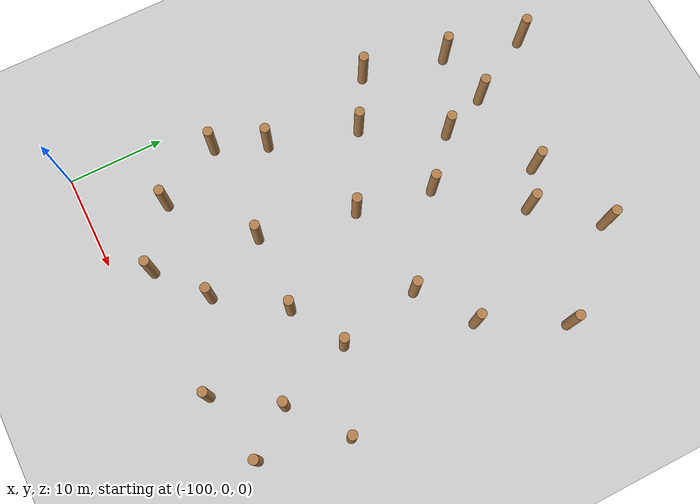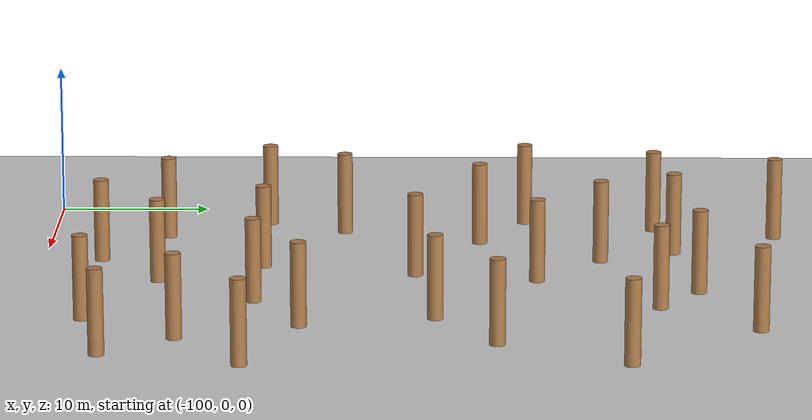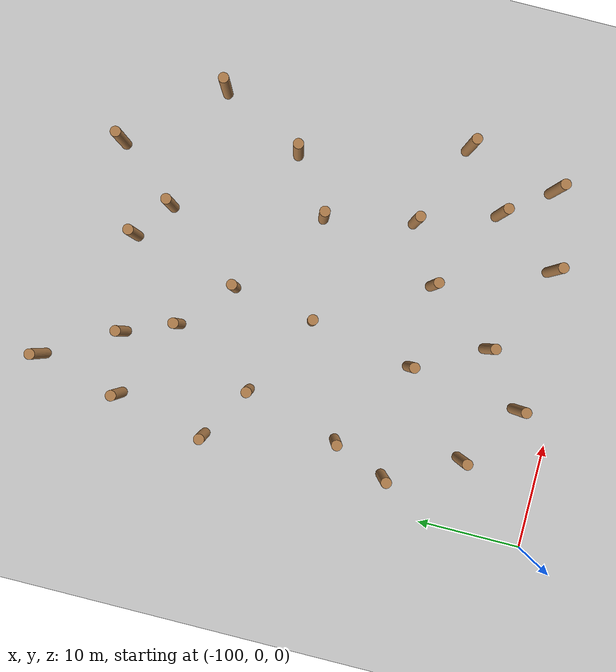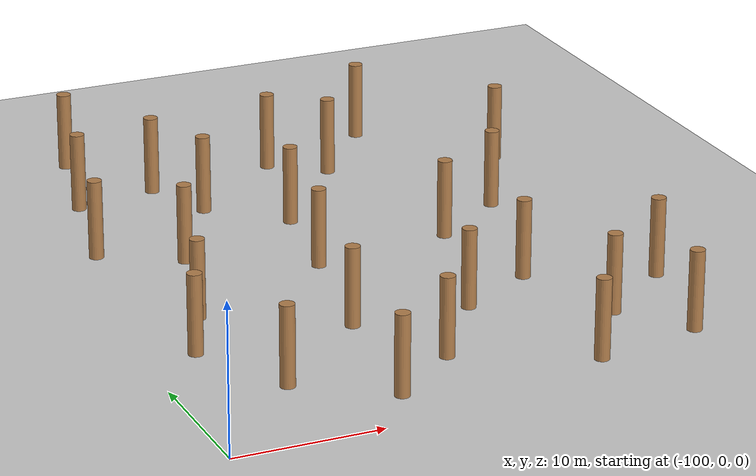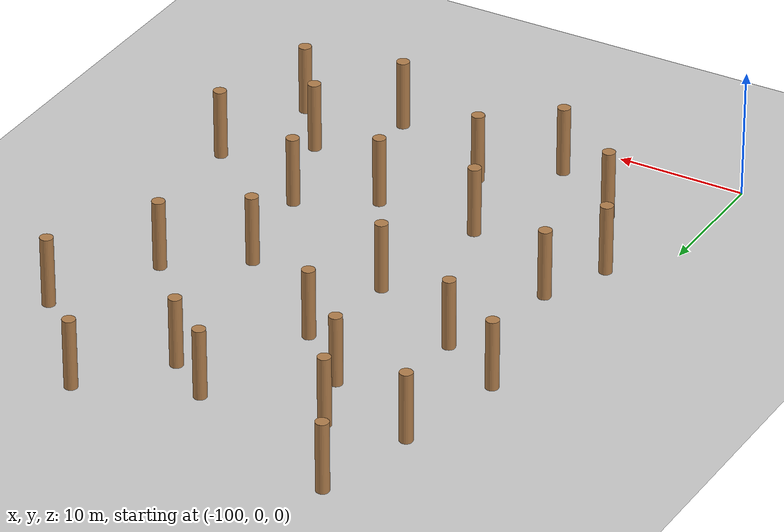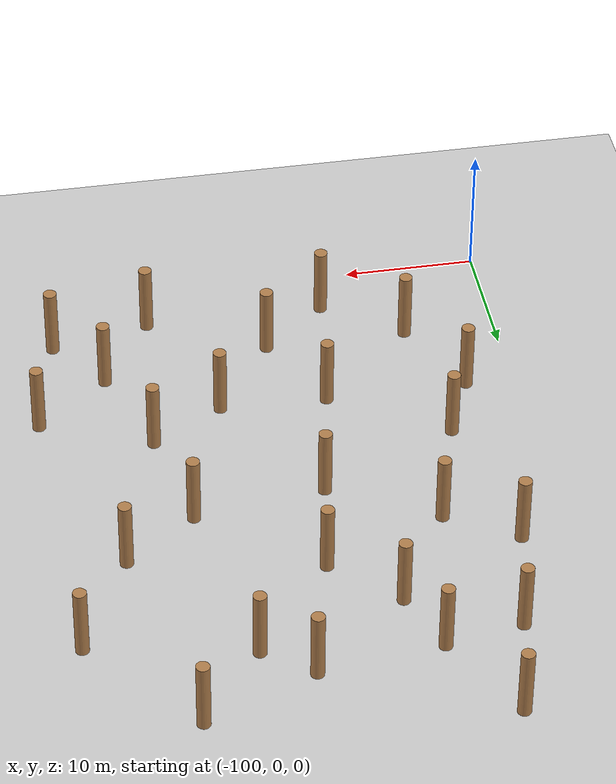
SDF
<sdf version="1.6">
 <world name="default">
  <model name="ground_plane">
   <static>1</static>
   <link name="link">
    <collision name="collision">
     <geometry><plane><normal>0 0 1</normal><size>100 100</size></plane></geometry>
     <surface><friction><ode><mu>100</mu><mu2>50</mu2></ode></friction></surface>
    </collision>
    <visual name="visual">
     <cast_shadows>0</cast_shadows>
     <geometry><plane><normal>0 0 1</normal><size>100 100</size></plane></geometry>
     <material>
      <script><uri>file://media/materials/scripts/gazebo.material</uri><name>Gazebo/Grey</name></script>
     </material>
    </visual>
   </link>
  </model>
  <model name="WoodPillars_9">
   <link name="link">
    <inertial>
     <mass>1</mass>
     <inertia><ixx>0.145833</ixx><ixy>0</ixy><ixz>0</ixz><iyy>0.145833</iyy><iyz>0</iyz><izz>0.125</izz></inertia>
    </inertial>
    <visual name="visual">
     <geometry><cylinder><radius>0.5</radius><length>5.50507</length></cylinder></geometry>
     <material>
      <script><name>Gazebo/Wood</name><uri>file://media/materials/scripts/gazebo.material</uri></script>
     </material>
    </visual>
    <collision name="collision">
     <geometry><cylinder><radius>0.5</radius><length>5.50507</length></cylinder></geometry>
     <surface>
      <friction>
       <ode><mu>1</mu><mu2>1</mu2><fdir1>0 0 0</fdir1><slip1>0</slip1><slip2>0</slip2></ode>
       <torsional>
        <coefficient>1</coefficient>
        <patch_radius>0</patch_radius>
        <surface_radius>0</surface_radius>
        <use_patch_radius>1</use_patch_radius>
        <ode><slip>0</slip></ode>
       </torsional>
      </friction>
      <bounce><restitution_coefficient>0</restitution_coefficient><threshold>1e+06</threshold></bounce>
      <contact>
       <collide_without_contact>0</collide_without_contact>
       <collide_without_contact_bitmask>1</collide_without_contact_bitmask>
       <collide_bitmask>1</collide_bitmask>
       <ode>
        <soft_cfm>0</soft_cfm>
        <soft_erp>0.2</soft_erp>
        <kp>1e+13</kp>
        <kd>1</kd>
        <max_vel>0.01</max_vel>
        <min_depth>0</min_depth>
       </ode>
       <bullet>
        <split_impulse>1</split_impulse>
        <split_impulse_penetration_threshold>-0.01</split_impulse_penetration_threshold>
        <soft_cfm>0</soft_cfm>
        <soft_erp>0.2</soft_erp>
        <kp>1e+13</kp>
        <kd>1</kd>
       </bullet>
      </contact>
     </surface>
    </collision>
   </link>
   <link name="link_clone">
    <inertial>
     <mass>1</mass>
     <inertia><ixx>0.145833</ixx><ixy>0</ixy><ixz>0</ixz><iyy>0.145833</iyy><iyz>0</iyz><izz>0.125</izz></inertia>
    </inertial>
    <pose>17.6954 -2.91348 -2e-06 0 -0 -0.001289</pose>
    <visual name="visual">
     <geometry><cylinder><radius>0.5</radius><length>5.50507</length></cylinder></geometry>
     <material>
      <script><name>Gazebo/Wood</name><uri>file://media/materials/scripts/gazebo.material</uri></script>
      <shader type="pixel"/>
     </material>
    </visual>
    <collision name="collision">
     <geometry><cylinder><radius>0.5</radius><length>5.50507</length></cylinder></geometry>
     <surface>
      <friction>
       <ode><mu>1</mu><mu2>1</mu2><fdir1>0 0 0</fdir1><slip1>0</slip1><slip2>0</slip2></ode>
       <torsional>
        <coefficient>1</coefficient>
        <patch_radius>0</patch_radius>
        <surface_radius>0</surface_radius>
        <use_patch_radius>1</use_patch_radius>
        <ode><slip>0</slip></ode>
       </torsional>
      </friction>
      <bounce><restitution_coefficient>0</restitution_coefficient><threshold>1e+06</threshold></bounce>
      <contact>
       <collide_without_contact>0</collide_without_contact>
       <collide_without_contact_bitmask>1</collide_without_contact_bitmask>
       <collide_bitmask>1</collide_bitmask>
       <ode>
        <soft_cfm>0</soft_cfm>
        <soft_erp>0.2</soft_erp>
        <kp>1e+13</kp>
        <kd>1</kd>
        <max_vel>0.01</max_vel>
        <min_depth>0</min_depth>
       </ode>
       <bullet>
        <split_impulse>1</split_impulse>
        <split_impulse_penetration_threshold>-0.01</split_impulse_penetration_threshold>
        <soft_cfm>0</soft_cfm>
        <soft_erp>0.2</soft_erp>
        <kp>1e+13</kp>
        <kd>1</kd>
       </bullet>
      </contact>
     </surface>
    </collision>
   </link>
   <link name="link_clone_10">
    <inertial>
     <mass>1</mass>
     <inertia><ixx>0.145833</ixx><ixy>0</ixy><ixz>0</ixz><iyy>0.145833</iyy><iyz>0</iyz><izz>0.125</izz></inertia>
    </inertial>
    <pose>2.50237 12.8939 0 0 -0 -0.001289</pose>
    <visual name="visual">
     <geometry><cylinder><radius>0.5</radius><length>5.50507</length></cylinder></geometry>
     <material>
      <script><name>Gazebo/Wood</name><uri>file://media/materials/scripts/gazebo.material</uri></script>
      <shader type="pixel"/>
     </material>
    </visual>
    <collision name="collision">
     <geometry><cylinder><radius>0.5</radius><length>5.50507</length></cylinder></geometry>
     <surface>
      <friction>
       <ode><mu>1</mu><mu2>1</mu2><fdir1>0 0 0</fdir1><slip1>0</slip1><slip2>0</slip2></ode>
       <torsional>
        <coefficient>1</coefficient>
        <patch_radius>0</patch_radius>
        <surface_radius>0</surface_radius>
        <use_patch_radius>1</use_patch_radius>
        <ode><slip>0</slip></ode>
       </torsional>
      </friction>
      <bounce><restitution_coefficient>0</restitution_coefficient><threshold>1e+06</threshold></bounce>
      <contact>
       <collide_without_contact>0</collide_without_contact>
       <collide_without_contact_bitmask>1</collide_without_contact_bitmask>
       <collide_bitmask>1</collide_bitmask>
       <ode>
        <soft_cfm>0</soft_cfm>
        <soft_erp>0.2</soft_erp>
        <kp>1e+13</kp>
        <kd>1</kd>
        <max_vel>0.01</max_vel>
        <min_depth>0</min_depth>
       </ode>
       <bullet>
        <split_impulse>1</split_impulse>
        <split_impulse_penetration_threshold>-0.01</split_impulse_penetration_threshold>
        <soft_cfm>0</soft_cfm>
        <soft_erp>0.2</soft_erp>
        <kp>1e+13</kp>
        <kd>1</kd>
       </bullet>
      </contact>
     </surface>
    </collision>
   </link>
   <link name="link_clone_11">
    <inertial>
     <mass>1</mass>
     <inertia><ixx>0.145833</ixx><ixy>0</ixy><ixz>0</ixz><iyy>0.145833</iyy><iyz>0</iyz><izz>0.125</izz></inertia>
    </inertial>
    <pose>20.1245 17.4079 -2e-06 0 -0 -0.001289</pose>
    <visual name="visual">
     <geometry><cylinder><radius>0.5</radius><length>5.50507</length></cylinder></geometry>
     <material>
      <script><name>Gazebo/Wood</name><uri>file://media/materials/scripts/gazebo.material</uri></script>
      <shader type="pixel"/>
     </material>
    </visual>
    <collision name="collision">
     <geometry><cylinder><radius>0.5</radius><length>5.50507</length></cylinder></geometry>
     <surface>
      <friction>
       <ode><mu>1</mu><mu2>1</mu2><fdir1>0 0 0</fdir1><slip1>0</slip1><slip2>0</slip2></ode>
       <torsional>
        <coefficient>1</coefficient>
        <patch_radius>0</patch_radius>
        <surface_radius>0</surface_radius>
        <use_patch_radius>1</use_patch_radius>
        <ode><slip>0</slip></ode>
       </torsional>
      </friction>
      <bounce><restitution_coefficient>0</restitution_coefficient><threshold>1e+06</threshold></bounce>
      <contact>
       <collide_without_contact>0</collide_without_contact>
       <collide_without_contact_bitmask>1</collide_without_contact_bitmask>
       <collide_bitmask>1</collide_bitmask>
       <ode>
        <soft_cfm>0</soft_cfm>
        <soft_erp>0.2</soft_erp>
        <kp>1e+13</kp>
        <kd>1</kd>
        <max_vel>0.01</max_vel>
        <min_depth>0</min_depth>
       </ode>
       <bullet>
        <split_impulse>1</split_impulse>
        <split_impulse_penetration_threshold>-0.01</split_impulse_penetration_threshold>
        <soft_cfm>0</soft_cfm>
        <soft_erp>0.2</soft_erp>
        <kp>1e+13</kp>
        <kd>1</kd>
       </bullet>
      </contact>
     </surface>
    </collision>
   </link>
   <link name="link_clone_14">
    <inertial>
     <mass>1</mass>
     <inertia><ixx>0.145833</ixx><ixy>0</ixy><ixz>0</ixz><iyy>0.145833</iyy><iyz>0</iyz><izz>0.125</izz></inertia>
    </inertial>
    <pose>9.31461 -20.9997 -1e-06 0 -0 -0.001289</pose>
    <visual name="visual">
     <geometry><cylinder><radius>0.5</radius><length>5.50507</length></cylinder></geometry>
     <material>
      <script><name>Gazebo/Wood</name><uri>file://media/materials/scripts/gazebo.material</uri></script>
      <shader type="pixel"/>
     </material>
    </visual>
    <collision name="collision">
     <geometry><cylinder><radius>0.5</radius><length>5.50507</length></cylinder></geometry>
     <surface>
      <friction>
       <ode><mu>1</mu><mu2>1</mu2><fdir1>0 0 0</fdir1><slip1>0</slip1><slip2>0</slip2></ode>
       <torsional>
        <coefficient>1</coefficient>
        <patch_radius>0</patch_radius>
        <surface_radius>0</surface_radius>
        <use_patch_radius>1</use_patch_radius>
        <ode><slip>0</slip></ode>
       </torsional>
      </friction>
      <bounce><restitution_coefficient>0</restitution_coefficient><threshold>1e+06</threshold></bounce>
      <contact>
       <collide_without_contact>0</collide_without_contact>
       <collide_without_contact_bitmask>1</collide_without_contact_bitmask>
       <collide_bitmask>1</collide_bitmask>
       <ode>
        <soft_cfm>0</soft_cfm>
        <soft_erp>0.2</soft_erp>
        <kp>1e+13</kp>
        <kd>1</kd>
        <max_vel>0.01</max_vel>
        <min_depth>0</min_depth>
       </ode>
       <bullet>
        <split_impulse>1</split_impulse>
        <split_impulse_penetration_threshold>-0.01</split_impulse_penetration_threshold>
        <soft_cfm>0</soft_cfm>
        <soft_erp>0.2</soft_erp>
        <kp>1e+13</kp>
        <kd>1</kd>
       </bullet>
      </contact>
     </surface>
    </collision>
   </link>
   <link name="link_clone_15">
    <inertial>
     <mass>1</mass>
     <inertia><ixx>0.145833</ixx><ixy>0</ixy><ixz>0</ixz><iyy>0.145833</iyy><iyz>0</iyz><izz>0.125</izz></inertia>
    </inertial>
    <pose>17.9894 -25.1945 -2e-06 0 -0 -0.001289</pose>
    <visual name="visual">
     <geometry><cylinder><radius>0.5</radius><length>5.50507</length></cylinder></geometry>
     <material>
      <script><name>Gazebo/Wood</name><uri>file://media/materials/scripts/gazebo.material</uri></script>
      <shader type="pixel"/>
     </material>
    </visual>
    <collision name="collision">
     <geometry><cylinder><radius>0.5</radius><length>5.50507</length></cylinder></geometry>
     <surface>
      <friction>
       <ode><mu>1</mu><mu2>1</mu2><fdir1>0 0 0</fdir1><slip1>0</slip1><slip2>0</slip2></ode>
       <torsional>
        <coefficient>1</coefficient>
        <patch_radius>0</patch_radius>
        <surface_radius>0</surface_radius>
        <use_patch_radius>1</use_patch_radius>
        <ode><slip>0</slip></ode>
       </torsional>
      </friction>
      <bounce><restitution_coefficient>0</restitution_coefficient><threshold>1e+06</threshold></bounce>
      <contact>
       <collide_without_contact>0</collide_without_contact>
       <collide_without_contact_bitmask>1</collide_without_contact_bitmask>
       <collide_bitmask>1</collide_bitmask>
       <ode>
        <soft_cfm>0</soft_cfm>
        <soft_erp>0.2</soft_erp>
        <kp>1e+13</kp>
        <kd>1</kd>
        <max_vel>0.01</max_vel>
        <min_depth>0</min_depth>
       </ode>
       <bullet>
        <split_impulse>1</split_impulse>
        <split_impulse_penetration_threshold>-0.01</split_impulse_penetration_threshold>
        <soft_cfm>0</soft_cfm>
        <soft_erp>0.2</soft_erp>
        <kp>1e+13</kp>
        <kd>1</kd>
       </bullet>
      </contact>
     </surface>
    </collision>
   </link>
   <link name="link_clone_17">
    <inertial>
     <mass>1</mass>
     <inertia><ixx>0.145833</ixx><ixy>0</ixy><ixz>0</ixz><iyy>0.145833</iyy><iyz>0</iyz><izz>0.125</izz></inertia>
    </inertial>
    <pose>19.3784 -11.4604 -2e-06 0 -0 -0.001289</pose>
    <visual name="visual">
     <geometry><cylinder><radius>0.5</radius><length>5.50507</length></cylinder></geometry>
     <material>
      <script><name>Gazebo/Wood</name><uri>file://media/materials/scripts/gazebo.material</uri></script>
      <shader type="pixel"/>
     </material>
    </visual>
    <collision name="collision">
     <geometry><cylinder><radius>0.5</radius><length>5.50507</length></cylinder></geometry>
     <surface>
      <friction>
       <ode><mu>1</mu><mu2>1</mu2><fdir1>0 0 0</fdir1><slip1>0</slip1><slip2>0</slip2></ode>
       <torsional>
        <coefficient>1</coefficient>
        <patch_radius>0</patch_radius>
        <surface_radius>0</surface_radius>
        <use_patch_radius>1</use_patch_radius>
        <ode><slip>0</slip></ode>
       </torsional>
      </friction>
      <bounce><restitution_coefficient>0</restitution_coefficient><threshold>1e+06</threshold></bounce>
      <contact>
       <collide_without_contact>0</collide_without_contact>
       <collide_without_contact_bitmask>1</collide_without_contact_bitmask>
       <collide_bitmask>1</collide_bitmask>
       <ode>
        <soft_cfm>0</soft_cfm>
        <soft_erp>0.2</soft_erp>
        <kp>1e+13</kp>
        <kd>1</kd>
        <max_vel>0.01</max_vel>
        <min_depth>0</min_depth>
       </ode>
       <bullet>
        <split_impulse>1</split_impulse>
        <split_impulse_penetration_threshold>-0.01</split_impulse_penetration_threshold>
        <soft_cfm>0</soft_cfm>
        <soft_erp>0.2</soft_erp>
        <kp>1e+13</kp>
        <kd>1</kd>
       </bullet>
      </contact>
     </surface>
    </collision>
   </link>
   <link name="link_clone_18">
    <inertial>
     <mass>1</mass>
     <inertia><ixx>0.145833</ixx><ixy>0</ixy><ixz>0</ixz><iyy>0.145833</iyy><iyz>0</iyz><izz>0.125</izz></inertia>
    </inertial>
    <pose>9.1573 3.67739 -1e-06 0 -0 -0.001289</pose>
    <visual name="visual">
     <geometry><cylinder><radius>0.5</radius><length>5.50507</length></cylinder></geometry>
     <material>
      <script><name>Gazebo/Wood</name><uri>file://media/materials/scripts/gazebo.material</uri></script>
      <shader type="pixel"/>
     </material>
    </visual>
    <collision name="collision">
     <geometry><cylinder><radius>0.5</radius><length>5.50507</length></cylinder></geometry>
     <surface>
      <friction>
       <ode><mu>1</mu><mu2>1</mu2><fdir1>0 0 0</fdir1><slip1>0</slip1><slip2>0</slip2></ode>
       <torsional>
        <coefficient>1</coefficient>
        <patch_radius>0</patch_radius>
        <surface_radius>0</surface_radius>
        <use_patch_radius>1</use_patch_radius>
        <ode><slip>0</slip></ode>
       </torsional>
      </friction>
      <bounce><restitution_coefficient>0</restitution_coefficient><threshold>1e+06</threshold></bounce>
      <contact>
       <collide_without_contact>0</collide_without_contact>
       <collide_without_contact_bitmask>1</collide_without_contact_bitmask>
       <collide_bitmask>1</collide_bitmask>
       <ode>
        <soft_cfm>0</soft_cfm>
        <soft_erp>0.2</soft_erp>
        <kp>1e+13</kp>
        <kd>1</kd>
        <max_vel>0.01</max_vel>
        <min_depth>0</min_depth>
       </ode>
       <bullet>
        <split_impulse>1</split_impulse>
        <split_impulse_penetration_threshold>-0.01</split_impulse_penetration_threshold>
        <soft_cfm>0</soft_cfm>
        <soft_erp>0.2</soft_erp>
        <kp>1e+13</kp>
        <kd>1</kd>
       </bullet>
      </contact>
     </surface>
    </collision>
   </link>
   <link name="link_clone_19">
    <inertial>
     <mass>1</mass>
     <inertia><ixx>0.145833</ixx><ixy>0</ixy><ixz>0</ixz><iyy>0.145833</iyy><iyz>0</iyz><izz>0.125</izz></inertia>
    </inertial>
    <pose>-3.28611 11.8265 -0 0 -0 -0.001289</pose>
    <visual name="visual">
     <geometry><cylinder><radius>0.5</radius><length>5.50507</length></cylinder></geometry>
     <material>
      <script><name>Gazebo/Wood</name><uri>file://media/materials/scripts/gazebo.material</uri></script>
      <shader type="pixel"/>
     </material>
    </visual>
    <collision name="collision">
     <geometry><cylinder><radius>0.5</radius><length>5.50507</length></cylinder></geometry>
     <surface>
      <friction>
       <ode><mu>1</mu><mu2>1</mu2><fdir1>0 0 0</fdir1><slip1>0</slip1><slip2>0</slip2></ode>
       <torsional>
        <coefficient>1</coefficient>
        <patch_radius>0</patch_radius>
        <surface_radius>0</surface_radius>
        <use_patch_radius>1</use_patch_radius>
        <ode><slip>0</slip></ode>
       </torsional>
      </friction>
      <bounce><restitution_coefficient>0</restitution_coefficient><threshold>1e+06</threshold></bounce>
      <contact>
       <collide_without_contact>0</collide_without_contact>
       <collide_without_contact_bitmask>1</collide_without_contact_bitmask>
       <collide_bitmask>1</collide_bitmask>
       <ode>
        <soft_cfm>0</soft_cfm>
        <soft_erp>0.2</soft_erp>
        <kp>1e+13</kp>
        <kd>1</kd>
        <max_vel>0.01</max_vel>
        <min_depth>0</min_depth>
       </ode>
       <bullet>
        <split_impulse>1</split_impulse>
        <split_impulse_penetration_threshold>-0.01</split_impulse_penetration_threshold>
        <soft_cfm>0</soft_cfm>
        <soft_erp>0.2</soft_erp>
        <kp>1e+13</kp>
        <kd>1</kd>
       </bullet>
      </contact>
     </surface>
    </collision>
   </link>
   <link name="link_clone_20">
    <inertial>
     <mass>1</mass>
     <inertia><ixx>0.145833</ixx><ixy>0</ixy><ixz>0</ixz><iyy>0.145833</iyy><iyz>0</iyz><izz>0.125</izz></inertia>
    </inertial>
    <pose>-2.64423 -9.12396 -0 0 -0 -0.001289</pose>
    <visual name="visual">
     <geometry><cylinder><radius>0.5</radius><length>5.50507</length></cylinder></geometry>
     <material>
      <script><name>Gazebo/Wood</name><uri>file://media/materials/scripts/gazebo.material</uri></script>
      <shader type="pixel"/>
     </material>
    </visual>
    <collision name="collision">
     <geometry><cylinder><radius>0.5</radius><length>5.50507</length></cylinder></geometry>
     <surface>
      <friction>
       <ode><mu>1</mu><mu2>1</mu2><fdir1>0 0 0</fdir1><slip1>0</slip1><slip2>0</slip2></ode>
       <torsional>
        <coefficient>1</coefficient>
        <patch_radius>0</patch_radius>
        <surface_radius>0</surface_radius>
        <use_patch_radius>1</use_patch_radius>
        <ode><slip>0</slip></ode>
       </torsional>
      </friction>
      <bounce><restitution_coefficient>0</restitution_coefficient><threshold>1e+06</threshold></bounce>
      <contact>
       <collide_without_contact>0</collide_without_contact>
       <collide_without_contact_bitmask>1</collide_without_contact_bitmask>
       <collide_bitmask>1</collide_bitmask>
       <ode>
        <soft_cfm>0</soft_cfm>
        <soft_erp>0.2</soft_erp>
        <kp>1e+13</kp>
        <kd>1</kd>
        <max_vel>0.01</max_vel>
        <min_depth>0</min_depth>
       </ode>
       <bullet>
        <split_impulse>1</split_impulse>
        <split_impulse_penetration_threshold>-0.01</split_impulse_penetration_threshold>
        <soft_cfm>0</soft_cfm>
        <soft_erp>0.2</soft_erp>
        <kp>1e+13</kp>
        <kd>1</kd>
       </bullet>
      </contact>
     </surface>
    </collision>
   </link>
   <link name="link_clone_21">
    <inertial>
     <mass>1</mass>
     <inertia><ixx>0.145833</ixx><ixy>0</ixy><ixz>0</ixz><iyy>0.145833</iyy><iyz>0</iyz><izz>0.125</izz></inertia>
    </inertial>
    <pose>15.2748 11.406 -1e-06 0 -0 -0.001289</pose>
    <visual name="visual">
     <geometry><cylinder><radius>0.5</radius><length>5.50507</length></cylinder></geometry>
     <material>
      <script><name>Gazebo/Wood</name><uri>file://media/materials/scripts/gazebo.material</uri></script>
      <shader type="pixel"/>
     </material>
    </visual>
    <collision name="collision">
     <geometry><cylinder><radius>0.5</radius><length>5.50507</length></cylinder></geometry>
     <surface>
      <friction>
       <ode><mu>1</mu><mu2>1</mu2><fdir1>0 0 0</fdir1><slip1>0</slip1><slip2>0</slip2></ode>
       <torsional>
        <coefficient>1</coefficient>
        <patch_radius>0</patch_radius>
        <surface_radius>0</surface_radius>
        <use_patch_radius>1</use_patch_radius>
        <ode><slip>0</slip></ode>
       </torsional>
      </friction>
      <bounce><restitution_coefficient>0</restitution_coefficient><threshold>1e+06</threshold></bounce>
      <contact>
       <collide_without_contact>0</collide_without_contact>
       <collide_without_contact_bitmask>1</collide_without_contact_bitmask>
       <collide_bitmask>1</collide_bitmask>
       <ode>
        <soft_cfm>0</soft_cfm>
        <soft_erp>0.2</soft_erp>
        <kp>1e+13</kp>
        <kd>1</kd>
        <max_vel>0.01</max_vel>
        <min_depth>0</min_depth>
       </ode>
       <bullet>
        <split_impulse>1</split_impulse>
        <split_impulse_penetration_threshold>-0.01</split_impulse_penetration_threshold>
        <soft_cfm>0</soft_cfm>
        <soft_erp>0.2</soft_erp>
        <kp>1e+13</kp>
        <kd>1</kd>
       </bullet>
      </contact>
     </surface>
    </collision>
   </link>
   <link name="link_clone_22">
    <inertial>
     <mass>1</mass>
     <inertia><ixx>0.145833</ixx><ixy>0</ixy><ixz>0</ixz><iyy>0.145833</iyy><iyz>0</iyz><izz>0.125</izz></inertia>
    </inertial>
    <pose>27.313 9.05961 -2e-06 0 -0 -0.001289</pose>
    <visual name="visual">
     <geometry><cylinder><radius>0.5</radius><length>5.50507</length></cylinder></geometry>
     <material>
      <script><name>Gazebo/Wood</name><uri>file://media/materials/scripts/gazebo.material</uri></script>
      <shader type="pixel"/>
     </material>
    </visual>
    <collision name="collision">
     <geometry><cylinder><radius>0.5</radius><length>5.50507</length></cylinder></geometry>
     <surface>
      <friction>
       <ode><mu>1</mu><mu2>1</mu2><fdir1>0 0 0</fdir1><slip1>0</slip1><slip2>0</slip2></ode>
       <torsional>
        <coefficient>1</coefficient>
        <patch_radius>0</patch_radius>
        <surface_radius>0</surface_radius>
        <use_patch_radius>1</use_patch_radius>
        <ode><slip>0</slip></ode>
       </torsional>
      </friction>
      <bounce><restitution_coefficient>0</restitution_coefficient><threshold>1e+06</threshold></bounce>
      <contact>
       <collide_without_contact>0</collide_without_contact>
       <collide_without_contact_bitmask>1</collide_without_contact_bitmask>
       <collide_bitmask>1</collide_bitmask>
       <ode>
        <soft_cfm>0</soft_cfm>
        <soft_erp>0.2</soft_erp>
        <kp>1e+13</kp>
        <kd>1</kd>
        <max_vel>0.01</max_vel>
        <min_depth>0</min_depth>
       </ode>
       <bullet>
        <split_impulse>1</split_impulse>
        <split_impulse_penetration_threshold>-0.01</split_impulse_penetration_threshold>
        <soft_cfm>0</soft_cfm>
        <soft_erp>0.2</soft_erp>
        <kp>1e+13</kp>
        <kd>1</kd>
       </bullet>
      </contact>
     </surface>
    </collision>
   </link>
   <link name="link_clone_24">
    <inertial>
     <mass>1</mass>
     <inertia><ixx>0.145833</ixx><ixy>0</ixy><ixz>0</ixz><iyy>0.145833</iyy><iyz>0</iyz><izz>0.125</izz></inertia>
    </inertial>
    <pose>7.84688 -4.26113 -1e-06 0 -0 -0.001289</pose>
    <visual name="visual">
     <geometry><cylinder><radius>0.5</radius><length>5.50507</length></cylinder></geometry>
     <material>
      <script><name>Gazebo/Wood</name><uri>file://media/materials/scripts/gazebo.material</uri></script>
      <shader type="pixel"/>
     </material>
    </visual>
    <collision name="collision">
     <geometry><cylinder><radius>0.5</radius><length>5.50507</length></cylinder></geometry>
     <surface>
      <friction>
       <ode><mu>1</mu><mu2>1</mu2><fdir1>0 0 0</fdir1><slip1>0</slip1><slip2>0</slip2></ode>
       <torsional>
        <coefficient>1</coefficient>
        <patch_radius>0</patch_radius>
        <surface_radius>0</surface_radius>
        <use_patch_radius>1</use_patch_radius>
        <ode><slip>0</slip></ode>
       </torsional>
      </friction>
      <bounce><restitution_coefficient>0</restitution_coefficient><threshold>1e+06</threshold></bounce>
      <contact>
       <collide_without_contact>0</collide_without_contact>
       <collide_without_contact_bitmask>1</collide_without_contact_bitmask>
       <collide_bitmask>1</collide_bitmask>
       <ode>
        <soft_cfm>0</soft_cfm>
        <soft_erp>0.2</soft_erp>
        <kp>1e+13</kp>
        <kd>1</kd>
        <max_vel>0.01</max_vel>
        <min_depth>0</min_depth>
       </ode>
       <bullet>
        <split_impulse>1</split_impulse>
        <split_impulse_penetration_threshold>-0.01</split_impulse_penetration_threshold>
        <soft_cfm>0</soft_cfm>
        <soft_erp>0.2</soft_erp>
        <kp>1e+13</kp>
        <kd>1</kd>
       </bullet>
      </contact>
     </surface>
    </collision>
   </link>
   <link name="link_clone_25">
    <inertial>
     <mass>1</mass>
     <inertia><ixx>0.145833</ixx><ixy>0</ixy><ixz>0</ixz><iyy>0.145833</iyy><iyz>0</iyz><izz>0.125</izz></inertia>
    </inertial>
    <pose>11.7271 14.0632 -1e-06 0 -0 -0.001289</pose>
    <visual name="visual">
     <geometry><cylinder><radius>0.5</radius><length>5.50507</length></cylinder></geometry>
     <material>
      <script><name>Gazebo/Wood</name><uri>file://media/materials/scripts/gazebo.material</uri></script>
      <shader type="pixel"/>
     </material>
    </visual>
    <collision name="collision">
     <geometry><cylinder><radius>0.5</radius><length>5.50507</length></cylinder></geometry>
     <surface>
      <friction>
       <ode><mu>1</mu><mu2>1</mu2><fdir1>0 0 0</fdir1><slip1>0</slip1><slip2>0</slip2></ode>
       <torsional>
        <coefficient>1</coefficient>
        <patch_radius>0</patch_radius>
        <surface_radius>0</surface_radius>
        <use_patch_radius>1</use_patch_radius>
        <ode><slip>0</slip></ode>
       </torsional>
      </friction>
      <bounce><restitution_coefficient>0</restitution_coefficient><threshold>1e+06</threshold></bounce>
      <contact>
       <collide_without_contact>0</collide_without_contact>
       <collide_without_contact_bitmask>1</collide_without_contact_bitmask>
       <collide_bitmask>1</collide_bitmask>
       <ode>
        <soft_cfm>0</soft_cfm>
        <soft_erp>0.2</soft_erp>
        <kp>1e+13</kp>
        <kd>1</kd>
        <max_vel>0.01</max_vel>
        <min_depth>0</min_depth>
       </ode>
       <bullet>
        <split_impulse>1</split_impulse>
        <split_impulse_penetration_threshold>-0.01</split_impulse_penetration_threshold>
        <soft_cfm>0</soft_cfm>
        <soft_erp>0.2</soft_erp>
        <kp>1e+13</kp>
        <kd>1</kd>
       </bullet>
      </contact>
     </surface>
    </collision>
   </link>
   <link name="link_clone_26">
    <inertial>
     <mass>1</mass>
     <inertia><ixx>0.145833</ixx><ixy>0</ixy><ixz>0</ixz><iyy>0.145833</iyy><iyz>0</iyz><izz>0.125</izz></inertia>
    </inertial>
    <pose>13.9187 -14.5508 -1e-06 0 -0 -0.001289</pose>
    <visual name="visual">
     <geometry><cylinder><radius>0.5</radius><length>5.50507</length></cylinder></geometry>
     <material>
      <script><name>Gazebo/Wood</name><uri>file://media/materials/scripts/gazebo.material</uri></script>
      <shader type="pixel"/>
     </material>
    </visual>
    <collision name="collision">
     <geometry><cylinder><radius>0.5</radius><length>5.50507</length></cylinder></geometry>
     <surface>
      <friction>
       <ode><mu>1</mu><mu2>1</mu2><fdir1>0 0 0</fdir1><slip1>0</slip1><slip2>0</slip2></ode>
       <torsional>
        <coefficient>1</coefficient>
        <patch_radius>0</patch_radius>
        <surface_radius>0</surface_radius>
        <use_patch_radius>1</use_patch_radius>
        <ode><slip>0</slip></ode>
       </torsional>
      </friction>
      <bounce><restitution_coefficient>0</restitution_coefficient><threshold>1e+06</threshold></bounce>
      <contact>
       <collide_without_contact>0</collide_without_contact>
       <collide_without_contact_bitmask>1</collide_without_contact_bitmask>
       <collide_bitmask>1</collide_bitmask>
       <ode>
        <soft_cfm>0</soft_cfm>
        <soft_erp>0.2</soft_erp>
        <kp>1e+13</kp>
        <kd>1</kd>
        <max_vel>0.01</max_vel>
        <min_depth>0</min_depth>
       </ode>
       <bullet>
        <split_impulse>1</split_impulse>
        <split_impulse_penetration_threshold>-0.01</split_impulse_penetration_threshold>
        <soft_cfm>0</soft_cfm>
        <soft_erp>0.2</soft_erp>
        <kp>1e+13</kp>
        <kd>1</kd>
       </bullet>
      </contact>
     </surface>
    </collision>
   </link>
   <link name="link_clone_27">
    <inertial>
     <mass>1</mass>
     <inertia><ixx>0.145833</ixx><ixy>0</ixy><ixz>0</ixz><iyy>0.145833</iyy><iyz>0</iyz><izz>0.125</izz></inertia>
    </inertial>
    <pose>4.38632 -25.0605 -1e-06 0 -0 -0.001289</pose>
    <visual name="visual">
     <geometry><cylinder><radius>0.5</radius><length>5.50507</length></cylinder></geometry>
     <material>
      <script><name>Gazebo/Wood</name><uri>file://media/materials/scripts/gazebo.material</uri></script>
      <shader type="pixel"/>
     </material>
    </visual>
    <collision name="collision">
     <geometry><cylinder><radius>0.5</radius><length>5.50507</length></cylinder></geometry>
     <surface>
      <friction>
       <ode><mu>1</mu><mu2>1</mu2><fdir1>0 0 0</fdir1><slip1>0</slip1><slip2>0</slip2></ode>
       <torsional>
        <coefficient>1</coefficient>
        <patch_radius>0</patch_radius>
        <surface_radius>0</surface_radius>
        <use_patch_radius>1</use_patch_radius>
        <ode><slip>0</slip></ode>
       </torsional>
      </friction>
      <bounce><restitution_coefficient>0</restitution_coefficient><threshold>1e+06</threshold></bounce>
      <contact>
       <collide_without_contact>0</collide_without_contact>
       <collide_without_contact_bitmask>1</collide_without_contact_bitmask>
       <collide_bitmask>1</collide_bitmask>
       <ode>
        <soft_cfm>0</soft_cfm>
        <soft_erp>0.2</soft_erp>
        <kp>1e+13</kp>
        <kd>1</kd>
        <max_vel>0.01</max_vel>
        <min_depth>0</min_depth>
       </ode>
       <bullet>
        <split_impulse>1</split_impulse>
        <split_impulse_penetration_threshold>-0.01</split_impulse_penetration_threshold>
        <soft_cfm>0</soft_cfm>
        <soft_erp>0.2</soft_erp>
        <kp>1e+13</kp>
        <kd>1</kd>
       </bullet>
      </contact>
     </surface>
    </collision>
   </link>
   <link name="link_clone_28">
    <inertial>
     <mass>1</mass>
     <inertia><ixx>0.145833</ixx><ixy>0</ixy><ixz>0</ixz><iyy>0.145833</iyy><iyz>0</iyz><izz>0.125</izz></inertia>
    </inertial>
    <pose>27.5353 -14.766 -3e-06 0 -0 -0.001289</pose>
    <visual name="visual">
     <geometry><cylinder><radius>0.5</radius><length>5.50507</length></cylinder></geometry>
     <material>
      <script><name>Gazebo/Wood</name><uri>file://media/materials/scripts/gazebo.material</uri></script>
      <shader type="pixel"/>
     </material>
    </visual>
    <collision name="collision">
     <geometry><cylinder><radius>0.5</radius><length>5.50507</length></cylinder></geometry>
     <surface>
      <friction>
       <ode><mu>1</mu><mu2>1</mu2><fdir1>0 0 0</fdir1><slip1>0</slip1><slip2>0</slip2></ode>
       <torsional>
        <coefficient>1</coefficient>
        <patch_radius>0</patch_radius>
        <surface_radius>0</surface_radius>
        <use_patch_radius>1</use_patch_radius>
        <ode><slip>0</slip></ode>
       </torsional>
      </friction>
      <bounce><restitution_coefficient>0</restitution_coefficient><threshold>1e+06</threshold></bounce>
      <contact>
       <collide_without_contact>0</collide_without_contact>
       <collide_without_contact_bitmask>1</collide_without_contact_bitmask>
       <collide_bitmask>1</collide_bitmask>
       <ode>
        <soft_cfm>0</soft_cfm>
        <soft_erp>0.2</soft_erp>
        <kp>1e+13</kp>
        <kd>1</kd>
        <max_vel>0.01</max_vel>
        <min_depth>0</min_depth>
       </ode>
       <bullet>
        <split_impulse>1</split_impulse>
        <split_impulse_penetration_threshold>-0.01</split_impulse_penetration_threshold>
        <soft_cfm>0</soft_cfm>
        <soft_erp>0.2</soft_erp>
        <kp>1e+13</kp>
        <kd>1</kd>
       </bullet>
      </contact>
     </surface>
    </collision>
   </link>
   <link name="link_clone_30">
    <inertial>
     <mass>1</mass>
     <inertia><ixx>0.145833</ixx><ixy>0</ixy><ixz>0</ixz><iyy>0.145833</iyy><iyz>0</iyz><izz>0.125</izz></inertia>
    </inertial>
    <pose>4.46339 7.97492 0 0 -0 -0.001289</pose>
    <visual name="visual">
     <geometry><cylinder><radius>0.5</radius><length>5.50507</length></cylinder></geometry>
     <material>
      <script><name>Gazebo/Wood</name><uri>file://media/materials/scripts/gazebo.material</uri></script>
      <shader type="pixel"/>
     </material>
    </visual>
    <collision name="collision">
     <geometry><cylinder><radius>0.5</radius><length>5.50507</length></cylinder></geometry>
     <surface>
      <friction>
       <ode><mu>1</mu><mu2>1</mu2><fdir1>0 0 0</fdir1><slip1>0</slip1><slip2>0</slip2></ode>
       <torsional>
        <coefficient>1</coefficient>
        <patch_radius>0</patch_radius>
        <surface_radius>0</surface_radius>
        <use_patch_radius>1</use_patch_radius>
        <ode><slip>0</slip></ode>
       </torsional>
      </friction>
      <bounce><restitution_coefficient>0</restitution_coefficient><threshold>1e+06</threshold></bounce>
      <contact>
       <collide_without_contact>0</collide_without_contact>
       <collide_without_contact_bitmask>1</collide_without_contact_bitmask>
       <collide_bitmask>1</collide_bitmask>
       <ode>
        <soft_cfm>0</soft_cfm>
        <soft_erp>0.2</soft_erp>
        <kp>1e+13</kp>
        <kd>1</kd>
        <max_vel>0.01</max_vel>
        <min_depth>0</min_depth>
       </ode>
       <bullet>
        <split_impulse>1</split_impulse>
        <split_impulse_penetration_threshold>-0.01</split_impulse_penetration_threshold>
        <soft_cfm>0</soft_cfm>
        <soft_erp>0.2</soft_erp>
        <kp>1e+13</kp>
        <kd>1</kd>
       </bullet>
      </contact>
     </surface>
    </collision>
   </link>
   <link name="link_clone_31">
    <inertial>
     <mass>1</mass>
     <inertia><ixx>0.145833</ixx><ixy>0</ixy><ixz>0</ixz><iyy>0.145833</iyy><iyz>0</iyz><izz>0.125</izz></inertia>
    </inertial>
    <pose>-1.44135 19.9016 0 0 -0 -0.001289</pose>
    <visual name="visual">
     <geometry><cylinder><radius>0.5</radius><length>5.50507</length></cylinder></geometry>
     <material>
      <script><name>Gazebo/Wood</name><uri>file://media/materials/scripts/gazebo.material</uri></script>
      <shader type="pixel"/>
     </material>
    </visual>
    <collision name="collision">
     <geometry><cylinder><radius>0.5</radius><length>5.50507</length></cylinder></geometry>
     <surface>
      <friction>
       <ode><mu>1</mu><mu2>1</mu2><fdir1>0 0 0</fdir1><slip1>0</slip1><slip2>0</slip2></ode>
       <torsional>
        <coefficient>1</coefficient>
        <patch_radius>0</patch_radius>
        <surface_radius>0</surface_radius>
        <use_patch_radius>1</use_patch_radius>
        <ode><slip>0</slip></ode>
       </torsional>
      </friction>
      <bounce><restitution_coefficient>0</restitution_coefficient><threshold>1e+06</threshold></bounce>
      <contact>
       <collide_without_contact>0</collide_without_contact>
       <collide_without_contact_bitmask>1</collide_without_contact_bitmask>
       <collide_bitmask>1</collide_bitmask>
       <ode>
        <soft_cfm>0</soft_cfm>
        <soft_erp>0.2</soft_erp>
        <kp>1e+13</kp>
        <kd>1</kd>
        <max_vel>0.01</max_vel>
        <min_depth>0</min_depth>
       </ode>
       <bullet>
        <split_impulse>1</split_impulse>
        <split_impulse_penetration_threshold>-0.01</split_impulse_penetration_threshold>
        <soft_cfm>0</soft_cfm>
        <soft_erp>0.2</soft_erp>
        <kp>1e+13</kp>
        <kd>1</kd>
       </bullet>
      </contact>
     </surface>
    </collision>
   </link>
   <link name="link_clone_32">
    <inertial>
     <mass>1</mass>
     <inertia><ixx>0.145833</ixx><ixy>0</ixy><ixz>0</ixz><iyy>0.145833</iyy><iyz>0</iyz><izz>0.125</izz></inertia>
    </inertial>
    <pose>-4.82669 -14.2698 -0 0 -0 -0.001289</pose>
    <visual name="visual">
     <geometry><cylinder><radius>0.5</radius><length>5.50507</length></cylinder></geometry>
     <material>
      <script><name>Gazebo/Wood</name><uri>file://media/materials/scripts/gazebo.material</uri></script>
      <shader type="pixel"/>
     </material>
    </visual>
    <collision name="collision">
     <geometry><cylinder><radius>0.5</radius><length>5.50507</length></cylinder></geometry>
     <surface>
      <friction>
       <ode><mu>1</mu><mu2>1</mu2><fdir1>0 0 0</fdir1><slip1>0</slip1><slip2>0</slip2></ode>
       <torsional>
        <coefficient>1</coefficient>
        <patch_radius>0</patch_radius>
        <surface_radius>0</surface_radius>
        <use_patch_radius>1</use_patch_radius>
        <ode><slip>0</slip></ode>
       </torsional>
      </friction>
      <bounce><restitution_coefficient>0</restitution_coefficient><threshold>1e+06</threshold></bounce>
      <contact>
       <collide_without_contact>0</collide_without_contact>
       <collide_without_contact_bitmask>1</collide_without_contact_bitmask>
       <collide_bitmask>1</collide_bitmask>
       <ode>
        <soft_cfm>0</soft_cfm>
        <soft_erp>0.2</soft_erp>
        <kp>1e+13</kp>
        <kd>1</kd>
        <max_vel>0.01</max_vel>
        <min_depth>0</min_depth>
       </ode>
       <bullet>
        <split_impulse>1</split_impulse>
        <split_impulse_penetration_threshold>-0.01</split_impulse_penetration_threshold>
        <soft_cfm>0</soft_cfm>
        <soft_erp>0.2</soft_erp>
        <kp>1e+13</kp>
        <kd>1</kd>
       </bullet>
      </contact>
     </surface>
    </collision>
   </link>
   <link name="link_clone_34">
    <inertial>
     <mass>1</mass>
     <inertia><ixx>0.145833</ixx><ixy>0</ixy><ixz>0</ixz><iyy>0.145833</iyy><iyz>0</iyz><izz>0.125</izz></inertia>
    </inertial>
    <pose>25.4673 -23.5908 -3e-06 0 -0 -0.001289</pose>
    <visual name="visual">
     <geometry><cylinder><radius>0.5</radius><length>5.50507</length></cylinder></geometry>
     <material>
      <script><name>Gazebo/Wood</name><uri>file://media/materials/scripts/gazebo.material</uri></script>
      <shader type="pixel"/>
     </material>
    </visual>
    <collision name="collision">
     <geometry><cylinder><radius>0.5</radius><length>5.50507</length></cylinder></geometry>
     <surface>
      <friction>
       <ode><mu>1</mu><mu2>1</mu2><fdir1>0 0 0</fdir1><slip1>0</slip1><slip2>0</slip2></ode>
       <torsional>
        <coefficient>1</coefficient>
        <patch_radius>0</patch_radius>
        <surface_radius>0</surface_radius>
        <use_patch_radius>1</use_patch_radius>
        <ode><slip>0</slip></ode>
       </torsional>
      </friction>
      <bounce><restitution_coefficient>0</restitution_coefficient><threshold>1e+06</threshold></bounce>
      <contact>
       <collide_without_contact>0</collide_without_contact>
       <collide_without_contact_bitmask>1</collide_without_contact_bitmask>
       <collide_bitmask>1</collide_bitmask>
       <ode>
        <soft_cfm>0</soft_cfm>
        <soft_erp>0.2</soft_erp>
        <kp>1e+13</kp>
        <kd>1</kd>
        <max_vel>0.01</max_vel>
        <min_depth>0</min_depth>
       </ode>
       <bullet>
        <split_impulse>1</split_impulse>
        <split_impulse_penetration_threshold>-0.01</split_impulse_penetration_threshold>
        <soft_cfm>0</soft_cfm>
        <soft_erp>0.2</soft_erp>
        <kp>1e+13</kp>
        <kd>1</kd>
       </bullet>
      </contact>
     </surface>
    </collision>
   </link>
   <link name="link_clone_35">
    <inertial>
     <mass>1</mass>
     <inertia><ixx>0.145833</ixx><ixy>0</ixy><ixz>0</ixz><iyy>0.145833</iyy><iyz>0</iyz><izz>0.125</izz></inertia>
    </inertial>
    <pose>-5.14728 3.10998 -0 0 -0 -0.001289</pose>
    <visual name="visual">
     <geometry><cylinder><radius>0.5</radius><length>5.50507</length></cylinder></geometry>
     <material>
      <script><name>Gazebo/Wood</name><uri>file://media/materials/scripts/gazebo.material</uri></script>
      <shader type="pixel"/>
     </material>
    </visual>
    <collision name="collision">
     <geometry><cylinder><radius>0.5</radius><length>5.50507</length></cylinder></geometry>
     <surface>
      <friction>
       <ode><mu>1</mu><mu2>1</mu2><fdir1>0 0 0</fdir1><slip1>0</slip1><slip2>0</slip2></ode>
       <torsional>
        <coefficient>1</coefficient>
        <patch_radius>0</patch_radius>
        <surface_radius>0</surface_radius>
        <use_patch_radius>1</use_patch_radius>
        <ode><slip>0</slip></ode>
       </torsional>
      </friction>
      <bounce><restitution_coefficient>0</restitution_coefficient><threshold>1e+06</threshold></bounce>
      <contact>
       <collide_without_contact>0</collide_without_contact>
       <collide_without_contact_bitmask>1</collide_without_contact_bitmask>
       <collide_bitmask>1</collide_bitmask>
       <ode>
        <soft_cfm>0</soft_cfm>
        <soft_erp>0.2</soft_erp>
        <kp>1e+13</kp>
        <kd>1</kd>
        <max_vel>0.01</max_vel>
        <min_depth>0</min_depth>
       </ode>
       <bullet>
        <split_impulse>1</split_impulse>
        <split_impulse_penetration_threshold>-0.01</split_impulse_penetration_threshold>
        <soft_cfm>0</soft_cfm>
        <soft_erp>0.2</soft_erp>
        <kp>1e+13</kp>
        <kd>1</kd>
       </bullet>
      </contact>
     </surface>
    </collision>
   </link>
   <link name="link_clone_4">
    <inertial>
     <mass>1</mass>
     <inertia><ixx>0.145833</ixx><ixy>0</ixy><ixz>0</ixz><iyy>0.145833</iyy><iyz>0</iyz><izz>0.125</izz></inertia>
    </inertial>
    <pose>23.1128 0.93751 -2e-06 0 -0 -0.001289</pose>
    <visual name="visual">
     <geometry><cylinder><radius>0.5</radius><length>5.50507</length></cylinder></geometry>
     <material>
      <script><name>Gazebo/Wood</name><uri>file://media/materials/scripts/gazebo.material</uri></script>
      <shader type="pixel"/>
     </material>
    </visual>
    <collision name="collision">
     <geometry><cylinder><radius>0.5</radius><length>5.50507</length></cylinder></geometry>
     <surface>
      <friction>
       <ode><mu>1</mu><mu2>1</mu2><fdir1>0 0 0</fdir1><slip1>0</slip1><slip2>0</slip2></ode>
       <torsional>
        <coefficient>1</coefficient>
        <patch_radius>0</patch_radius>
        <surface_radius>0</surface_radius>
        <use_patch_radius>1</use_patch_radius>
        <ode><slip>0</slip></ode>
       </torsional>
      </friction>
      <bounce><restitution_coefficient>0</restitution_coefficient><threshold>1e+06</threshold></bounce>
      <contact>
       <collide_without_contact>0</collide_without_contact>
       <collide_without_contact_bitmask>1</collide_without_contact_bitmask>
       <collide_bitmask>1</collide_bitmask>
       <ode>
        <soft_cfm>0</soft_cfm>
        <soft_erp>0.2</soft_erp>
        <kp>1e+13</kp>
        <kd>1</kd>
        <max_vel>0.01</max_vel>
        <min_depth>0</min_depth>
       </ode>
       <bullet>
        <split_impulse>1</split_impulse>
        <split_impulse_penetration_threshold>-0.01</split_impulse_penetration_threshold>
        <soft_cfm>0</soft_cfm>
        <soft_erp>0.2</soft_erp>
        <kp>1e+13</kp>
        <kd>1</kd>
       </bullet>
      </contact>
     </surface>
    </collision>
   </link>
   <link name="link_clone_7">
    <inertial>
     <mass>1</mass>
     <inertia><ixx>0.145833</ixx><ixy>0</ixy><ixz>0</ixz><iyy>0.145833</iyy><iyz>0</iyz><izz>0.125</izz></inertia>
    </inertial>
    <pose>22.0331 -19.0814 -2e-06 0 -0 -0.001289</pose>
    <visual name="visual">
     <geometry><cylinder><radius>0.5</radius><length>5.50507</length></cylinder></geometry>
     <material>
      <script><name>Gazebo/Wood</name><uri>file://media/materials/scripts/gazebo.material</uri></script>
      <shader type="pixel"/>
     </material>
    </visual>
    <collision name="collision">
     <geometry><cylinder><radius>0.5</radius><length>5.50507</length></cylinder></geometry>
     <surface>
      <friction>
       <ode><mu>1</mu><mu2>1</mu2><fdir1>0 0 0</fdir1><slip1>0</slip1><slip2>0</slip2></ode>
       <torsional>
        <coefficient>1</coefficient>
        <patch_radius>0</patch_radius>
        <surface_radius>0</surface_radius>
        <use_patch_radius>1</use_patch_radius>
        <ode><slip>0</slip></ode>
       </torsional>
      </friction>
      <bounce><restitution_coefficient>0</restitution_coefficient><threshold>1e+06</threshold></bounce>
      <contact>
       <collide_without_contact>0</collide_without_contact>
       <collide_without_contact_bitmask>1</collide_without_contact_bitmask>
       <collide_bitmask>1</collide_bitmask>
       <ode>
        <soft_cfm>0</soft_cfm>
        <soft_erp>0.2</soft_erp>
        <kp>1e+13</kp>
        <kd>1</kd>
        <max_vel>0.01</max_vel>
        <min_depth>0</min_depth>
       </ode>
       <bullet>
        <split_impulse>1</split_impulse>
        <split_impulse_penetration_threshold>-0.01</split_impulse_penetration_threshold>
        <soft_cfm>0</soft_cfm>
        <soft_erp>0.2</soft_erp>
        <kp>1e+13</kp>
        <kd>1</kd>
       </bullet>
      </contact>
     </surface>
    </collision>
   </link>
   <link name="link_clone_8">
    <inertial>
     <mass>1</mass>
     <inertia><ixx>0.145833</ixx><ixy>0</ixy><ixz>0</ixz><iyy>0.145833</iyy><iyz>0</iyz><izz>0.125</izz></inertia>
    </inertial>
    <pose>5.87636 -14.2578 -1e-06 0 -0 -0.001289</pose>
    <visual name="visual">
     <geometry><cylinder><radius>0.5</radius><length>5.50507</length></cylinder></geometry>
     <material>
      <script><name>Gazebo/Wood</name><uri>file://media/materials/scripts/gazebo.material</uri></script>
      <shader type="pixel"/>
     </material>
    </visual>
    <collision name="collision">
     <geometry><cylinder><radius>0.5</radius><length>5.50507</length></cylinder></geometry>
     <surface>
      <friction>
       <ode><mu>1</mu><mu2>1</mu2><fdir1>0 0 0</fdir1><slip1>0</slip1><slip2>0</slip2></ode>
       <torsional>
        <coefficient>1</coefficient>
        <patch_radius>0</patch_radius>
        <surface_radius>0</surface_radius>
        <use_patch_radius>1</use_patch_radius>
        <ode><slip>0</slip></ode>
       </torsional>
      </friction>
      <bounce><restitution_coefficient>0</restitution_coefficient><threshold>1e+06</threshold></bounce>
      <contact>
       <collide_without_contact>0</collide_without_contact>
       <collide_without_contact_bitmask>1</collide_without_contact_bitmask>
       <collide_bitmask>1</collide_bitmask>
       <ode>
        <soft_cfm>0</soft_cfm>
        <soft_erp>0.2</soft_erp>
        <kp>1e+13</kp>
        <kd>1</kd>
        <max_vel>0.01</max_vel>
        <min_depth>0</min_depth>
       </ode>
       <bullet>
        <split_impulse>1</split_impulse>
        <split_impulse_penetration_threshold>-0.01</split_impulse_penetration_threshold>
        <soft_cfm>0</soft_cfm>
        <soft_erp>0.2</soft_erp>
        <kp>1e+13</kp>
        <kd>1</kd>
       </bullet>
      </contact>
     </surface>
    </collision>
   </link>
   <link name="link_clone_9">
    <inertial>
     <mass>1</mass>
     <inertia><ixx>0.145833</ixx><ixy>0</ixy><ixz>0</ixz><iyy>0.145833</iyy><iyz>0</iyz><izz>0.125</izz></inertia>
    </inertial>
    <pose>-1.43964 -21.0028 0 0 -0 -0.001289</pose>
    <visual name="visual">
     <geometry><cylinder><radius>0.5</radius><length>5.50507</length></cylinder></geometry>
     <material>
      <script><name>Gazebo/Wood</name><uri>file://media/materials/scripts/gazebo.material</uri></script>
      <shader type="pixel"/>
     </material>
    </visual>
    <collision name="collision">
     <geometry><cylinder><radius>0.5</radius><length>5.50507</length></cylinder></geometry>
     <surface>
      <friction>
       <ode><mu>1</mu><mu2>1</mu2><fdir1>0 0 0</fdir1><slip1>0</slip1><slip2>0</slip2></ode>
       <torsional>
        <coefficient>1</coefficient>
        <patch_radius>0</patch_radius>
        <surface_radius>0</surface_radius>
        <use_patch_radius>1</use_patch_radius>
        <ode><slip>0</slip></ode>
       </torsional>
      </friction>
      <bounce><restitution_coefficient>0</restitution_coefficient><threshold>1e+06</threshold></bounce>
      <contact>
       <collide_without_contact>0</collide_without_contact>
       <collide_without_contact_bitmask>1</collide_without_contact_bitmask>
       <collide_bitmask>1</collide_bitmask>
       <ode>
        <soft_cfm>0</soft_cfm>
        <soft_erp>0.2</soft_erp>
        <kp>1e+13</kp>
        <kd>1</kd>
        <max_vel>0.01</max_vel>
        <min_depth>0</min_depth>
       </ode>
       <bullet>
        <split_impulse>1</split_impulse>
        <split_impulse_penetration_threshold>-0.01</split_impulse_penetration_threshold>
        <soft_cfm>0</soft_cfm>
        <soft_erp>0.2</soft_erp>
        <kp>1e+13</kp>
        <kd>1</kd>
       </bullet>
      </contact>
     </surface>
    </collision>
   </link>
   <static>0</static>
   <pose>-91.6289 28.871 2.75253 0 -0 0.001496</pose>
  </model>
 </world>
</sdf>
